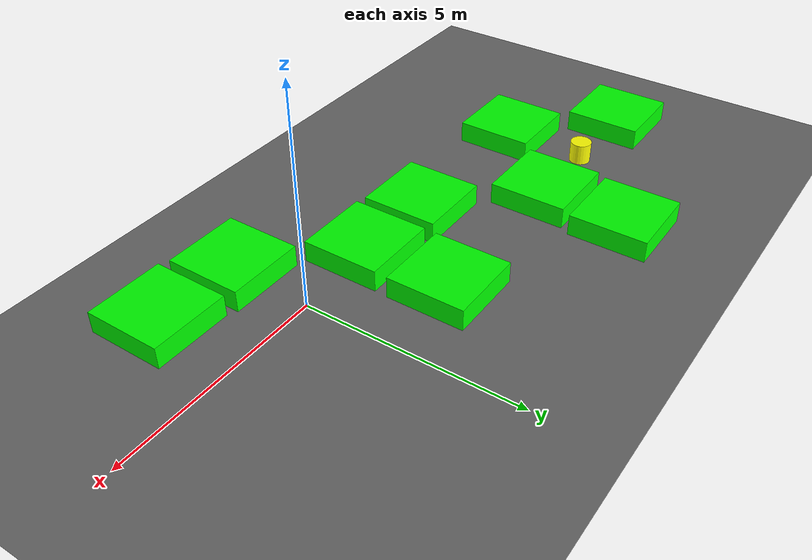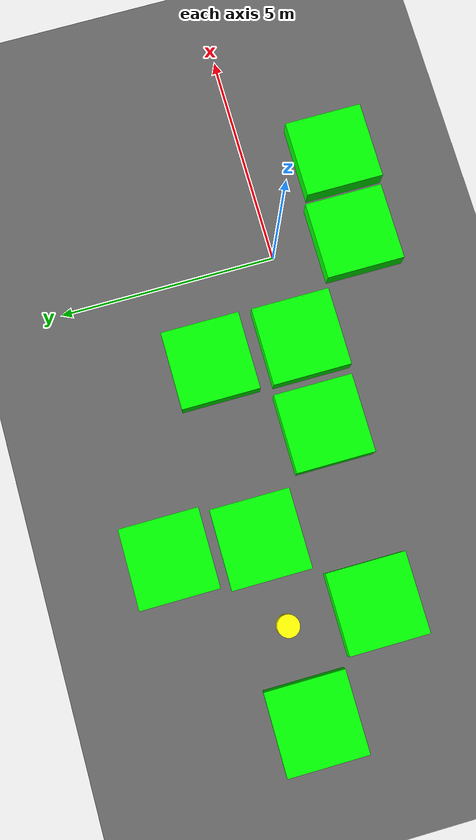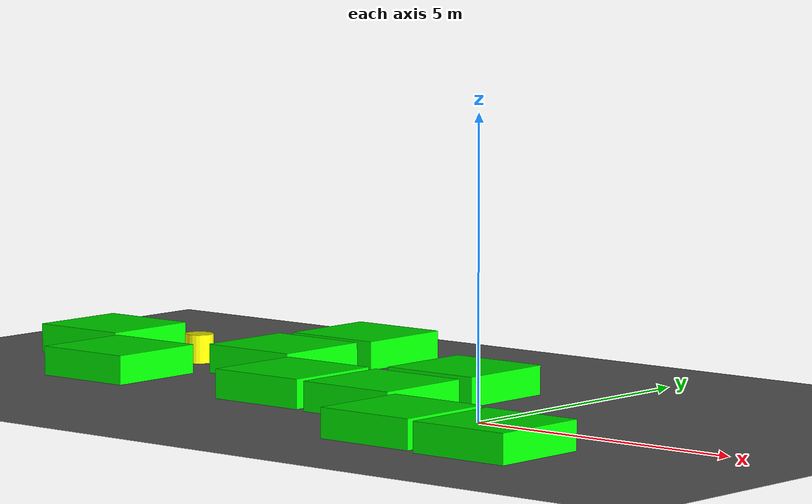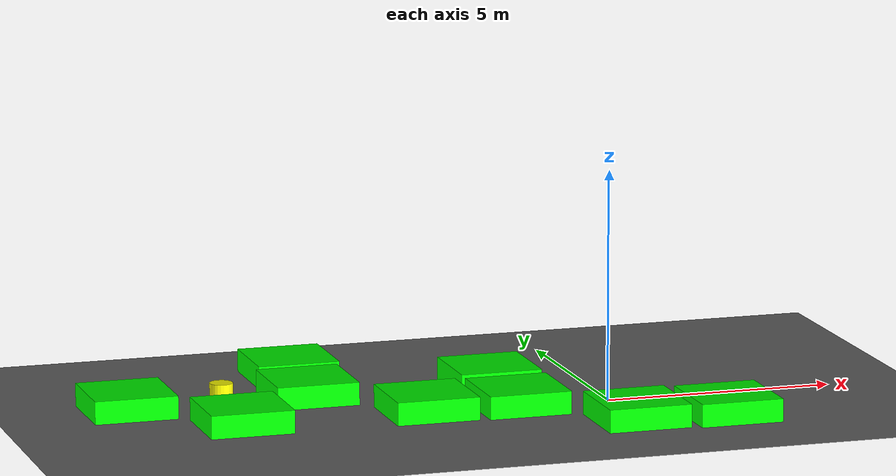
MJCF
<mujoco model="randommix_011_lvl0_standard_obs9_d1short_seed1064">
    <compiler angle="degree" coordinate="local" inertiafromgeom="true"/>
    <option integrator="RK4" timestep="0.01"/>

    <asset>
        <texture builtin="gradient" height="100" rgb1="0.6 0.8 1" rgb2="0 0 0" type="skybox" width="100"/>
        <texture name="floor_texture" type="2d" builtin="checker" width="100" height="100" rgb1="0 0 0" rgb2="0.8 0.8 0.8"/>
        <material name="MatPlane" reflectance="0.5" shininess="1" specular="1" texrepeat="10 10" texture="floor_texture"/>
    </asset>

    <!-- Excluding the contact between the agent and the goal, and the agent and the floor -->
    <contact>
        <exclude body1="agent" body2="goal"/>
        <exclude body1 = "agent" body2 = "floor"/>
    </contact>

    <extension>
        <plugin plugin = "mujoco.pid">
            <instance name = "pid1">
                <config key="kp" value="2"/>
                <config key="ki" value="0"/>
                <config key="kd" value="55"/>
            </instance>
        </plugin>
    </extension>

    <worldbody>
        <light cutoff="100" diffuse="1 1 1" dir="-0 0 -1.3" directional="true" exponent="1" pos="0 0 1.3" specular=".1 .1 .1"/>
        <body name="floor" pos="0 0 0">
            <geom name="floor_geom" type="plane" size="20 20 0.1" material="MatPlane"/>
        </body>

                <body name="goal" pos="0.0000 0.0000 0">
            <geom name="goal_geom" type="plane" size="0.5 0.5 1" pos="0 0 0" rgba="1 0 0 1"/>
        </body>

                <body name="agent" pos="-8.0000 2.0000 0.250">
            <joint name="j1" type="slide" axis ="1 0 0 "/>
            <joint name="j2" type="slide" axis ="0 1 0 "/>
            <geom name="agent_geom" type="cylinder" size="0.25 0.25 0.250" rgba="1 1 0 1"/>
        </body>

        <body name="obstacle1" pos="-5.9544 4.0727 0.250">  <geom name="obstacle1_geom" type="box" size="0.9000 0.9000 0.250" rgba="0 1 0 1"/></body>
        <body name="obstacle2" pos="-10.0656 1.9915 0.250">  <geom name="obstacle2_geom" type="box" size="0.9000 0.9000 0.250" rgba="0 1 0 1"/></body>
        <body name="obstacle3" pos="-6.0816 2.0609 0.250">  <geom name="obstacle3_geom" type="box" size="0.9000 0.9000 0.250" rgba="0 1 0 1"/></body>
        <body name="obstacle4" pos="-2.0098 2.0511 0.250">  <geom name="obstacle4_geom" type="box" size="0.9000 0.9000 0.250" rgba="0 1 0 1"/></body>
        <body name="obstacle5" pos="-8.0583 0.0365 0.250">  <geom name="obstacle5_geom" type="box" size="0.9000 0.9000 0.250" rgba="0 1 0 1"/></body>
        <body name="obstacle6" pos="-4.0386 0.0166 0.250">  <geom name="obstacle6_geom" type="box" size="0.9000 0.9000 0.250" rgba="0 1 0 1"/></body>
        <body name="obstacle7" pos="-2.0262 -0.0467 0.250">  <geom name="obstacle7_geom" type="box" size="0.9000 0.9000 0.250" rgba="0 1 0 1"/></body>
        <body name="obstacle8" pos="-0.0004 -1.9069 0.250">  <geom name="obstacle8_geom" type="box" size="0.9000 0.9000 0.250" rgba="0 1 0 1"/></body>
        <body name="obstacle9" pos="1.9968 -2.0147 0.250">  <geom name="obstacle9_geom" type="box" size="0.9000 0.9000 0.250" rgba="0 1 0 1"/></body>

    </worldbody>

    <sensor>
<!-- SENSORS -->

        <distance name="dist1" geom1="agent_geom" geom2="obstacle1_geom" cutoff="1.5"/>
        <distance name="dist2" geom1="agent_geom" geom2="obstacle2_geom" cutoff="1.5"/>
        <distance name="dist3" geom1="agent_geom" geom2="obstacle3_geom" cutoff="1.5"/>
        <distance name="dist4" geom1="agent_geom" geom2="obstacle4_geom" cutoff="1.5"/>
        <distance name="dist5" geom1="agent_geom" geom2="obstacle5_geom" cutoff="1.5"/>
        <distance name="dist6" geom1="agent_geom" geom2="obstacle6_geom" cutoff="1.5"/>
        <distance name="dist7" geom1="agent_geom" geom2="obstacle7_geom" cutoff="1.5"/>
        <distance name="dist8" geom1="agent_geom" geom2="obstacle8_geom" cutoff="1.5"/>
        <distance name="dist9" geom1="agent_geom" geom2="obstacle9_geom" cutoff="1.5"/>
</sensor>

    <actuator>
        <plugin joint="j1" plugin="mujoco.pid" instance="pid1" />
        <plugin joint="j2" plugin="mujoco.pid" instance="pid1"/>
    </actuator>
</mujoco>
